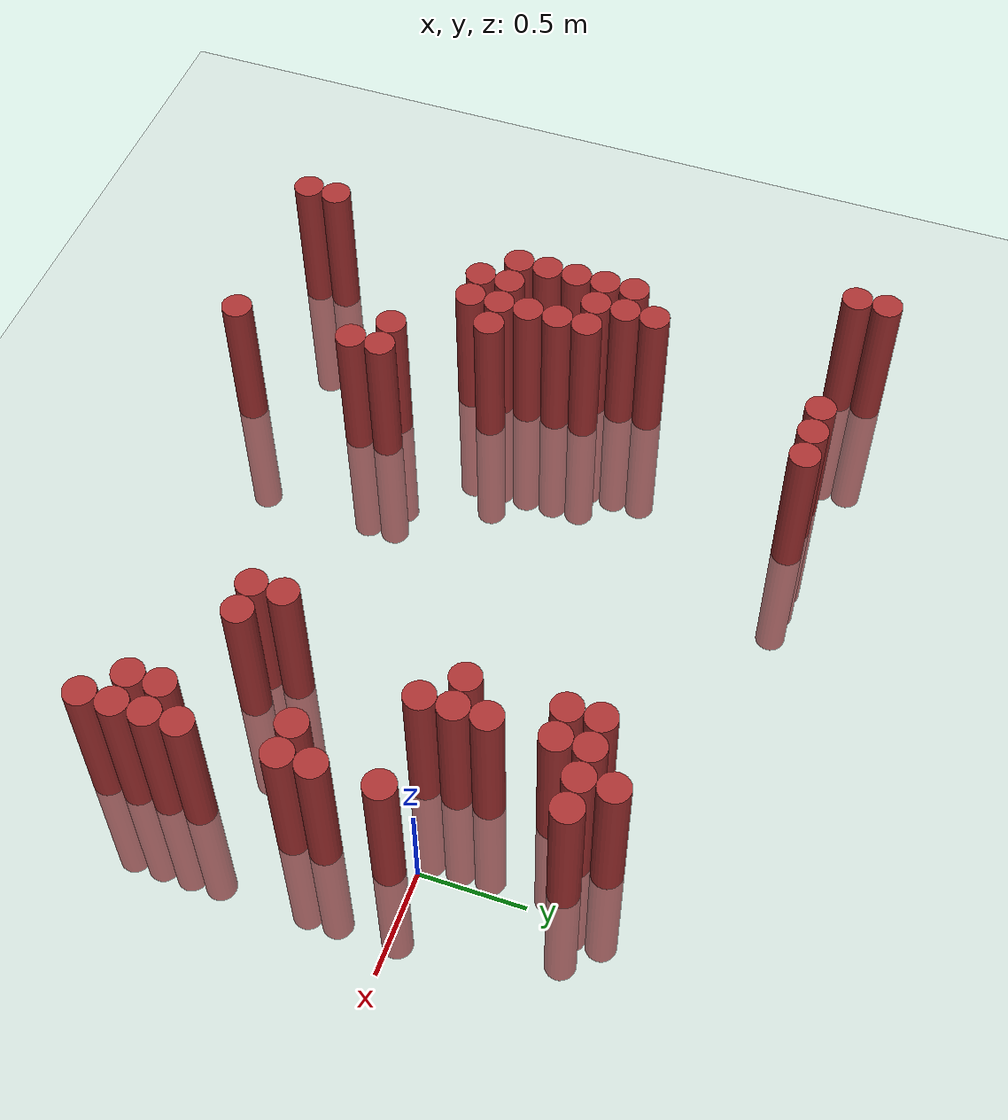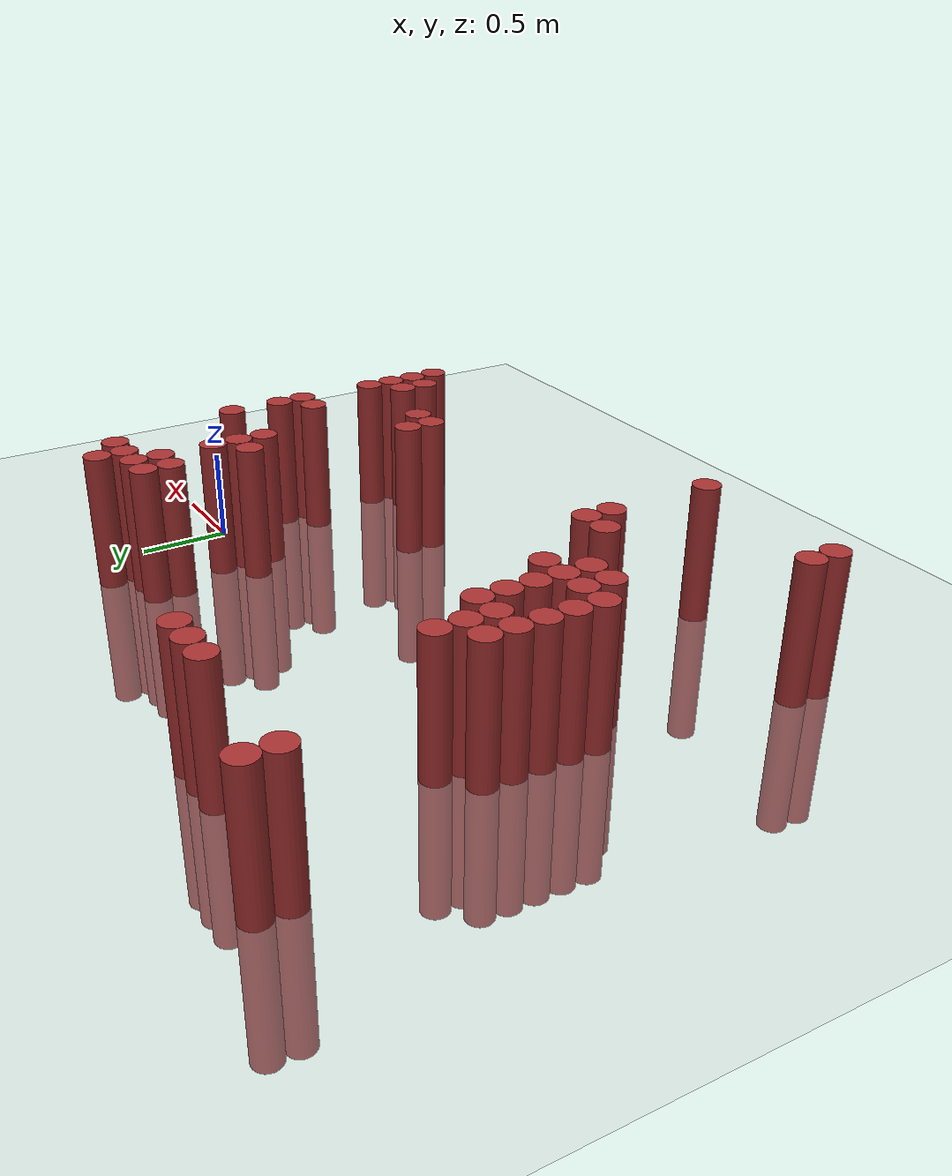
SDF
<sdf version="1.6">
 <world name="default">
  <model name="ground_plane">
   <static>1</static>
   <link name="link">
    <collision name="collision">
     <geometry><plane><normal>0 0 1</normal><size>100 100</size></plane></geometry>
     <surface><friction><ode><mu>100</mu><mu2>50</mu2></ode></friction></surface>
    </collision>
    <visual name="visual">
     <cast_shadows>0</cast_shadows>
     <geometry><plane><normal>0 0 1</normal><size>100 100</size></plane></geometry>
     <material>
      <script><uri>file://media/materials/scripts/gazebo.material</uri><name>Gazebo/Grey</name></script>
     </material>
    </visual>
   </link>
  </model>
  <model name="unit_cylinder_267">
   <static>1</static>
   <pose>-3.275000 1.075000 0.000000 0.000000 0.000000 0.000000</pose>
   <link name="link">
    <inertial>
     <mass>1</mass>
     <inertia><ixx>0.145833</ixx><ixy>0</ixy><ixz>0</ixz><iyy>0.145833</iyy><iyz>0</iyz><izz>0.125</izz></inertia>
    </inertial>
    <collision name="collision">
     <geometry><cylinder><radius>0.075000</radius><length>1.5</length></cylinder></geometry>
    </collision>
    <visual name="visual">
     <geometry><cylinder><radius>0.075000</radius><length>1.5</length></cylinder></geometry>
     <material>
      <ambient>0.648000 0.192000 0.192000 1</ambient>
      <diffuse>0.648000 0.192000 0.192000 1</diffuse>
     </material>
     <material>
      <script><name>Gazebo/Grey</name><uri>file://media/materials/scripts/gazebo.material</uri></script>
     </material>
    </visual>
   </link>
  </model>
  <model name="unit_cylinder_268">
   <static>1</static>
   <pose>-3.275000 1.225000 0.000000 0.000000 0.000000 0.000000</pose>
   <link name="link">
    <inertial>
     <mass>1</mass>
     <inertia><ixx>0.145833</ixx><ixy>0</ixy><ixz>0</ixz><iyy>0.145833</iyy><iyz>0</iyz><izz>0.125</izz></inertia>
    </inertial>
    <collision name="collision">
     <geometry><cylinder><radius>0.075000</radius><length>1.5</length></cylinder></geometry>
    </collision>
    <visual name="visual">
     <geometry><cylinder><radius>0.075000</radius><length>1.5</length></cylinder></geometry>
     <material>
      <ambient>0.648000 0.192000 0.192000 1</ambient>
      <diffuse>0.648000 0.192000 0.192000 1</diffuse>
     </material>
     <material>
      <script><name>Gazebo/Grey</name><uri>file://media/materials/scripts/gazebo.material</uri></script>
     </material>
    </visual>
   </link>
  </model>
  <model name="unit_cylinder_281">
   <static>1</static>
   <pose>-3.125000 -1.775000 0.000000 0.000000 0.000000 0.000000</pose>
   <link name="link">
    <inertial>
     <mass>1</mass>
     <inertia><ixx>0.145833</ixx><ixy>0</ixy><ixz>0</ixz><iyy>0.145833</iyy><iyz>0</iyz><izz>0.125</izz></inertia>
    </inertial>
    <collision name="collision">
     <geometry><cylinder><radius>0.075000</radius><length>1.5</length></cylinder></geometry>
    </collision>
    <visual name="visual">
     <geometry><cylinder><radius>0.075000</radius><length>1.5</length></cylinder></geometry>
     <material>
      <ambient>0.648000 0.192000 0.192000 1</ambient>
      <diffuse>0.648000 0.192000 0.192000 1</diffuse>
     </material>
     <material>
      <script><name>Gazebo/Grey</name><uri>file://media/materials/scripts/gazebo.material</uri></script>
     </material>
    </visual>
   </link>
  </model>
  <model name="unit_cylinder_282">
   <static>1</static>
   <pose>-3.125000 -1.625000 0.000000 0.000000 0.000000 0.000000</pose>
   <link name="link">
    <inertial>
     <mass>1</mass>
     <inertia><ixx>0.145833</ixx><ixy>0</ixy><ixz>0</ixz><iyy>0.145833</iyy><iyz>0</iyz><izz>0.125</izz></inertia>
    </inertial>
    <collision name="collision">
     <geometry><cylinder><radius>0.075000</radius><length>1.5</length></cylinder></geometry>
    </collision>
    <visual name="visual">
     <geometry><cylinder><radius>0.075000</radius><length>1.5</length></cylinder></geometry>
     <material>
      <ambient>0.648000 0.192000 0.192000 1</ambient>
      <diffuse>0.648000 0.192000 0.192000 1</diffuse>
     </material>
     <material>
      <script><name>Gazebo/Grey</name><uri>file://media/materials/scripts/gazebo.material</uri></script>
     </material>
    </visual>
   </link>
  </model>
  <model name="unit_cylinder_287">
   <static>1</static>
   <pose>-2.975000 -0.575000 0.000000 0.000000 0.000000 0.000000</pose>
   <link name="link">
    <inertial>
     <mass>1</mass>
     <inertia><ixx>0.145833</ixx><ixy>0</ixy><ixz>0</ixz><iyy>0.145833</iyy><iyz>0</iyz><izz>0.125</izz></inertia>
    </inertial>
    <collision name="collision">
     <geometry><cylinder><radius>0.075000</radius><length>1.5</length></cylinder></geometry>
    </collision>
    <visual name="visual">
     <geometry><cylinder><radius>0.075000</radius><length>1.5</length></cylinder></geometry>
     <material>
      <ambient>0.648000 0.192000 0.192000 1</ambient>
      <diffuse>0.648000 0.192000 0.192000 1</diffuse>
     </material>
     <material>
      <script><name>Gazebo/Grey</name><uri>file://media/materials/scripts/gazebo.material</uri></script>
     </material>
    </visual>
   </link>
  </model>
  <model name="unit_cylinder_288">
   <static>1</static>
   <pose>-2.975000 -0.425000 0.000000 0.000000 0.000000 0.000000</pose>
   <link name="link">
    <inertial>
     <mass>1</mass>
     <inertia><ixx>0.145833</ixx><ixy>0</ixy><ixz>0</ixz><iyy>0.145833</iyy><iyz>0</iyz><izz>0.125</izz></inertia>
    </inertial>
    <collision name="collision">
     <geometry><cylinder><radius>0.075000</radius><length>1.5</length></cylinder></geometry>
    </collision>
    <visual name="visual">
     <geometry><cylinder><radius>0.075000</radius><length>1.5</length></cylinder></geometry>
     <material>
      <ambient>0.648000 0.192000 0.192000 1</ambient>
      <diffuse>0.648000 0.192000 0.192000 1</diffuse>
     </material>
     <material>
      <script><name>Gazebo/Grey</name><uri>file://media/materials/scripts/gazebo.material</uri></script>
     </material>
    </visual>
   </link>
  </model>
  <model name="unit_cylinder_289">
   <static>1</static>
   <pose>-2.975000 -0.275000 0.000000 0.000000 0.000000 0.000000</pose>
   <link name="link">
    <inertial>
     <mass>1</mass>
     <inertia><ixx>0.145833</ixx><ixy>0</ixy><ixz>0</ixz><iyy>0.145833</iyy><iyz>0</iyz><izz>0.125</izz></inertia>
    </inertial>
    <collision name="collision">
     <geometry><cylinder><radius>0.075000</radius><length>1.5</length></cylinder></geometry>
    </collision>
    <visual name="visual">
     <geometry><cylinder><radius>0.075000</radius><length>1.5</length></cylinder></geometry>
     <material>
      <ambient>0.648000 0.192000 0.192000 1</ambient>
      <diffuse>0.648000 0.192000 0.192000 1</diffuse>
     </material>
     <material>
      <script><name>Gazebo/Grey</name><uri>file://media/materials/scripts/gazebo.material</uri></script>
     </material>
    </visual>
   </link>
  </model>
  <model name="unit_cylinder_290">
   <static>1</static>
   <pose>-2.975000 -0.125000 0.000000 0.000000 0.000000 0.000000</pose>
   <link name="link">
    <inertial>
     <mass>1</mass>
     <inertia><ixx>0.145833</ixx><ixy>0</ixy><ixz>0</ixz><iyy>0.145833</iyy><iyz>0</iyz><izz>0.125</izz></inertia>
    </inertial>
    <collision name="collision">
     <geometry><cylinder><radius>0.075000</radius><length>1.5</length></cylinder></geometry>
    </collision>
    <visual name="visual">
     <geometry><cylinder><radius>0.075000</radius><length>1.5</length></cylinder></geometry>
     <material>
      <ambient>0.648000 0.192000 0.192000 1</ambient>
      <diffuse>0.648000 0.192000 0.192000 1</diffuse>
     </material>
     <material>
      <script><name>Gazebo/Grey</name><uri>file://media/materials/scripts/gazebo.material</uri></script>
     </material>
    </visual>
   </link>
  </model>
  <model name="unit_cylinder_291">
   <static>1</static>
   <pose>-2.975000 0.025000 0.000000 0.000000 0.000000 0.000000</pose>
   <link name="link">
    <inertial>
     <mass>1</mass>
     <inertia><ixx>0.145833</ixx><ixy>0</ixy><ixz>0</ixz><iyy>0.145833</iyy><iyz>0</iyz><izz>0.125</izz></inertia>
    </inertial>
    <collision name="collision">
     <geometry><cylinder><radius>0.075000</radius><length>1.5</length></cylinder></geometry>
    </collision>
    <visual name="visual">
     <geometry><cylinder><radius>0.075000</radius><length>1.5</length></cylinder></geometry>
     <material>
      <ambient>0.648000 0.192000 0.192000 1</ambient>
      <diffuse>0.648000 0.192000 0.192000 1</diffuse>
     </material>
     <material>
      <script><name>Gazebo/Grey</name><uri>file://media/materials/scripts/gazebo.material</uri></script>
     </material>
    </visual>
   </link>
  </model>
  <model name="unit_cylinder_297">
   <static>1</static>
   <pose>-2.825000 -0.725000 0.000000 0.000000 0.000000 0.000000</pose>
   <link name="link">
    <inertial>
     <mass>1</mass>
     <inertia><ixx>0.145833</ixx><ixy>0</ixy><ixz>0</ixz><iyy>0.145833</iyy><iyz>0</iyz><izz>0.125</izz></inertia>
    </inertial>
    <collision name="collision">
     <geometry><cylinder><radius>0.075000</radius><length>1.5</length></cylinder></geometry>
    </collision>
    <visual name="visual">
     <geometry><cylinder><radius>0.075000</radius><length>1.5</length></cylinder></geometry>
     <material>
      <ambient>0.648000 0.192000 0.192000 1</ambient>
      <diffuse>0.648000 0.192000 0.192000 1</diffuse>
     </material>
     <material>
      <script><name>Gazebo/Grey</name><uri>file://media/materials/scripts/gazebo.material</uri></script>
     </material>
    </visual>
   </link>
  </model>
  <model name="unit_cylinder_298">
   <static>1</static>
   <pose>-2.825000 -0.575000 0.000000 0.000000 0.000000 0.000000</pose>
   <link name="link">
    <inertial>
     <mass>1</mass>
     <inertia><ixx>0.145833</ixx><ixy>0</ixy><ixz>0</ixz><iyy>0.145833</iyy><iyz>0</iyz><izz>0.125</izz></inertia>
    </inertial>
    <collision name="collision">
     <geometry><cylinder><radius>0.075000</radius><length>1.5</length></cylinder></geometry>
    </collision>
    <visual name="visual">
     <geometry><cylinder><radius>0.075000</radius><length>1.5</length></cylinder></geometry>
     <material>
      <ambient>0.648000 0.192000 0.192000 1</ambient>
      <diffuse>0.648000 0.192000 0.192000 1</diffuse>
     </material>
     <material>
      <script><name>Gazebo/Grey</name><uri>file://media/materials/scripts/gazebo.material</uri></script>
     </material>
    </visual>
   </link>
  </model>
  <model name="unit_cylinder_299">
   <static>1</static>
   <pose>-2.825000 -0.125000 0.000000 0.000000 0.000000 0.000000</pose>
   <link name="link">
    <inertial>
     <mass>1</mass>
     <inertia><ixx>0.145833</ixx><ixy>0</ixy><ixz>0</ixz><iyy>0.145833</iyy><iyz>0</iyz><izz>0.125</izz></inertia>
    </inertial>
    <collision name="collision">
     <geometry><cylinder><radius>0.075000</radius><length>1.5</length></cylinder></geometry>
    </collision>
    <visual name="visual">
     <geometry><cylinder><radius>0.075000</radius><length>1.5</length></cylinder></geometry>
     <material>
      <ambient>0.648000 0.192000 0.192000 1</ambient>
      <diffuse>0.648000 0.192000 0.192000 1</diffuse>
     </material>
     <material>
      <script><name>Gazebo/Grey</name><uri>file://media/materials/scripts/gazebo.material</uri></script>
     </material>
    </visual>
   </link>
  </model>
  <model name="unit_cylinder_300">
   <static>1</static>
   <pose>-2.825000 0.025000 0.000000 0.000000 0.000000 0.000000</pose>
   <link name="link">
    <inertial>
     <mass>1</mass>
     <inertia><ixx>0.145833</ixx><ixy>0</ixy><ixz>0</ixz><iyy>0.145833</iyy><iyz>0</iyz><izz>0.125</izz></inertia>
    </inertial>
    <collision name="collision">
     <geometry><cylinder><radius>0.075000</radius><length>1.5</length></cylinder></geometry>
    </collision>
    <visual name="visual">
     <geometry><cylinder><radius>0.075000</radius><length>1.5</length></cylinder></geometry>
     <material>
      <ambient>0.648000 0.192000 0.192000 1</ambient>
      <diffuse>0.648000 0.192000 0.192000 1</diffuse>
     </material>
     <material>
      <script><name>Gazebo/Grey</name><uri>file://media/materials/scripts/gazebo.material</uri></script>
     </material>
    </visual>
   </link>
  </model>
  <model name="unit_cylinder_301">
   <static>1</static>
   <pose>-2.825000 0.175000 0.000000 0.000000 0.000000 0.000000</pose>
   <link name="link">
    <inertial>
     <mass>1</mass>
     <inertia><ixx>0.145833</ixx><ixy>0</ixy><ixz>0</ixz><iyy>0.145833</iyy><iyz>0</iyz><izz>0.125</izz></inertia>
    </inertial>
    <collision name="collision">
     <geometry><cylinder><radius>0.075000</radius><length>1.5</length></cylinder></geometry>
    </collision>
    <visual name="visual">
     <geometry><cylinder><radius>0.075000</radius><length>1.5</length></cylinder></geometry>
     <material>
      <ambient>0.648000 0.192000 0.192000 1</ambient>
      <diffuse>0.648000 0.192000 0.192000 1</diffuse>
     </material>
     <material>
      <script><name>Gazebo/Grey</name><uri>file://media/materials/scripts/gazebo.material</uri></script>
     </material>
    </visual>
   </link>
  </model>
  <model name="unit_cylinder_309">
   <static>1</static>
   <pose>-2.675000 -0.725000 0.000000 0.000000 0.000000 0.000000</pose>
   <link name="link">
    <inertial>
     <mass>1</mass>
     <inertia><ixx>0.145833</ixx><ixy>0</ixy><ixz>0</ixz><iyy>0.145833</iyy><iyz>0</iyz><izz>0.125</izz></inertia>
    </inertial>
    <collision name="collision">
     <geometry><cylinder><radius>0.075000</radius><length>1.5</length></cylinder></geometry>
    </collision>
    <visual name="visual">
     <geometry><cylinder><radius>0.075000</radius><length>1.5</length></cylinder></geometry>
     <material>
      <ambient>0.648000 0.192000 0.192000 1</ambient>
      <diffuse>0.648000 0.192000 0.192000 1</diffuse>
     </material>
     <material>
      <script><name>Gazebo/Grey</name><uri>file://media/materials/scripts/gazebo.material</uri></script>
     </material>
    </visual>
   </link>
  </model>
  <model name="unit_cylinder_310">
   <static>1</static>
   <pose>-2.675000 -0.575000 0.000000 0.000000 0.000000 0.000000</pose>
   <link name="link">
    <inertial>
     <mass>1</mass>
     <inertia><ixx>0.145833</ixx><ixy>0</ixy><ixz>0</ixz><iyy>0.145833</iyy><iyz>0</iyz><izz>0.125</izz></inertia>
    </inertial>
    <collision name="collision">
     <geometry><cylinder><radius>0.075000</radius><length>1.5</length></cylinder></geometry>
    </collision>
    <visual name="visual">
     <geometry><cylinder><radius>0.075000</radius><length>1.5</length></cylinder></geometry>
     <material>
      <ambient>0.648000 0.192000 0.192000 1</ambient>
      <diffuse>0.648000 0.192000 0.192000 1</diffuse>
     </material>
     <material>
      <script><name>Gazebo/Grey</name><uri>file://media/materials/scripts/gazebo.material</uri></script>
     </material>
    </visual>
   </link>
  </model>
  <model name="unit_cylinder_311">
   <static>1</static>
   <pose>-2.675000 -0.425000 0.000000 0.000000 0.000000 0.000000</pose>
   <link name="link">
    <inertial>
     <mass>1</mass>
     <inertia><ixx>0.145833</ixx><ixy>0</ixy><ixz>0</ixz><iyy>0.145833</iyy><iyz>0</iyz><izz>0.125</izz></inertia>
    </inertial>
    <collision name="collision">
     <geometry><cylinder><radius>0.075000</radius><length>1.5</length></cylinder></geometry>
    </collision>
    <visual name="visual">
     <geometry><cylinder><radius>0.075000</radius><length>1.5</length></cylinder></geometry>
     <material>
      <ambient>0.648000 0.192000 0.192000 1</ambient>
      <diffuse>0.648000 0.192000 0.192000 1</diffuse>
     </material>
     <material>
      <script><name>Gazebo/Grey</name><uri>file://media/materials/scripts/gazebo.material</uri></script>
     </material>
    </visual>
   </link>
  </model>
  <model name="unit_cylinder_312">
   <static>1</static>
   <pose>-2.675000 -0.275000 0.000000 0.000000 0.000000 0.000000</pose>
   <link name="link">
    <inertial>
     <mass>1</mass>
     <inertia><ixx>0.145833</ixx><ixy>0</ixy><ixz>0</ixz><iyy>0.145833</iyy><iyz>0</iyz><izz>0.125</izz></inertia>
    </inertial>
    <collision name="collision">
     <geometry><cylinder><radius>0.075000</radius><length>1.5</length></cylinder></geometry>
    </collision>
    <visual name="visual">
     <geometry><cylinder><radius>0.075000</radius><length>1.5</length></cylinder></geometry>
     <material>
      <ambient>0.648000 0.192000 0.192000 1</ambient>
      <diffuse>0.648000 0.192000 0.192000 1</diffuse>
     </material>
     <material>
      <script><name>Gazebo/Grey</name><uri>file://media/materials/scripts/gazebo.material</uri></script>
     </material>
    </visual>
   </link>
  </model>
  <model name="unit_cylinder_313">
   <static>1</static>
   <pose>-2.675000 -0.125000 0.000000 0.000000 0.000000 0.000000</pose>
   <link name="link">
    <inertial>
     <mass>1</mass>
     <inertia><ixx>0.145833</ixx><ixy>0</ixy><ixz>0</ixz><iyy>0.145833</iyy><iyz>0</iyz><izz>0.125</izz></inertia>
    </inertial>
    <collision name="collision">
     <geometry><cylinder><radius>0.075000</radius><length>1.5</length></cylinder></geometry>
    </collision>
    <visual name="visual">
     <geometry><cylinder><radius>0.075000</radius><length>1.5</length></cylinder></geometry>
     <material>
      <ambient>0.648000 0.192000 0.192000 1</ambient>
      <diffuse>0.648000 0.192000 0.192000 1</diffuse>
     </material>
     <material>
      <script><name>Gazebo/Grey</name><uri>file://media/materials/scripts/gazebo.material</uri></script>
     </material>
    </visual>
   </link>
  </model>
  <model name="unit_cylinder_324">
   <static>1</static>
   <pose>-2.525000 -0.575000 0.000000 0.000000 0.000000 0.000000</pose>
   <link name="link">
    <inertial>
     <mass>1</mass>
     <inertia><ixx>0.145833</ixx><ixy>0</ixy><ixz>0</ixz><iyy>0.145833</iyy><iyz>0</iyz><izz>0.125</izz></inertia>
    </inertial>
    <collision name="collision">
     <geometry><cylinder><radius>0.075000</radius><length>1.5</length></cylinder></geometry>
    </collision>
    <visual name="visual">
     <geometry><cylinder><radius>0.075000</radius><length>1.5</length></cylinder></geometry>
     <material>
      <ambient>0.648000 0.192000 0.192000 1</ambient>
      <diffuse>0.648000 0.192000 0.192000 1</diffuse>
     </material>
     <material>
      <script><name>Gazebo/Grey</name><uri>file://media/materials/scripts/gazebo.material</uri></script>
     </material>
    </visual>
   </link>
  </model>
  <model name="unit_cylinder_325">
   <static>1</static>
   <pose>-2.525000 1.075000 0.000000 0.000000 0.000000 0.000000</pose>
   <link name="link">
    <inertial>
     <mass>1</mass>
     <inertia><ixx>0.145833</ixx><ixy>0</ixy><ixz>0</ixz><iyy>0.145833</iyy><iyz>0</iyz><izz>0.125</izz></inertia>
    </inertial>
    <collision name="collision">
     <geometry><cylinder><radius>0.075000</radius><length>1.5</length></cylinder></geometry>
    </collision>
    <visual name="visual">
     <geometry><cylinder><radius>0.075000</radius><length>1.5</length></cylinder></geometry>
     <material>
      <ambient>0.648000 0.192000 0.192000 1</ambient>
      <diffuse>0.648000 0.192000 0.192000 1</diffuse>
     </material>
     <material>
      <script><name>Gazebo/Grey</name><uri>file://media/materials/scripts/gazebo.material</uri></script>
     </material>
    </visual>
   </link>
  </model>
  <model name="unit_cylinder_334">
   <static>1</static>
   <pose>-2.375000 -1.025000 0.000000 0.000000 0.000000 0.000000</pose>
   <link name="link">
    <inertial>
     <mass>1</mass>
     <inertia><ixx>0.145833</ixx><ixy>0</ixy><ixz>0</ixz><iyy>0.145833</iyy><iyz>0</iyz><izz>0.125</izz></inertia>
    </inertial>
    <collision name="collision">
     <geometry><cylinder><radius>0.075000</radius><length>1.5</length></cylinder></geometry>
    </collision>
    <visual name="visual">
     <geometry><cylinder><radius>0.075000</radius><length>1.5</length></cylinder></geometry>
     <material>
      <ambient>0.648000 0.192000 0.192000 1</ambient>
      <diffuse>0.648000 0.192000 0.192000 1</diffuse>
     </material>
     <material>
      <script><name>Gazebo/Grey</name><uri>file://media/materials/scripts/gazebo.material</uri></script>
     </material>
    </visual>
   </link>
  </model>
  <model name="unit_cylinder_335">
   <static>1</static>
   <pose>-2.375000 1.075000 0.000000 0.000000 0.000000 0.000000</pose>
   <link name="link">
    <inertial>
     <mass>1</mass>
     <inertia><ixx>0.145833</ixx><ixy>0</ixy><ixz>0</ixz><iyy>0.145833</iyy><iyz>0</iyz><izz>0.125</izz></inertia>
    </inertial>
    <collision name="collision">
     <geometry><cylinder><radius>0.075000</radius><length>1.5</length></cylinder></geometry>
    </collision>
    <visual name="visual">
     <geometry><cylinder><radius>0.075000</radius><length>1.5</length></cylinder></geometry>
     <material>
      <ambient>0.648000 0.192000 0.192000 1</ambient>
      <diffuse>0.648000 0.192000 0.192000 1</diffuse>
     </material>
     <material>
      <script><name>Gazebo/Grey</name><uri>file://media/materials/scripts/gazebo.material</uri></script>
     </material>
    </visual>
   </link>
  </model>
  <model name="unit_cylinder_339">
   <static>1</static>
   <pose>-2.225000 -1.775000 0.000000 0.000000 0.000000 0.000000</pose>
   <link name="link">
    <inertial>
     <mass>1</mass>
     <inertia><ixx>0.145833</ixx><ixy>0</ixy><ixz>0</ixz><iyy>0.145833</iyy><iyz>0</iyz><izz>0.125</izz></inertia>
    </inertial>
    <collision name="collision">
     <geometry><cylinder><radius>0.075000</radius><length>1.5</length></cylinder></geometry>
    </collision>
    <visual name="visual">
     <geometry><cylinder><radius>0.075000</radius><length>1.5</length></cylinder></geometry>
     <material>
      <ambient>0.648000 0.192000 0.192000 1</ambient>
      <diffuse>0.648000 0.192000 0.192000 1</diffuse>
     </material>
     <material>
      <script><name>Gazebo/Grey</name><uri>file://media/materials/scripts/gazebo.material</uri></script>
     </material>
    </visual>
   </link>
  </model>
  <model name="unit_cylinder_340">
   <static>1</static>
   <pose>-2.225000 -1.175000 0.000000 0.000000 0.000000 0.000000</pose>
   <link name="link">
    <inertial>
     <mass>1</mass>
     <inertia><ixx>0.145833</ixx><ixy>0</ixy><ixz>0</ixz><iyy>0.145833</iyy><iyz>0</iyz><izz>0.125</izz></inertia>
    </inertial>
    <collision name="collision">
     <geometry><cylinder><radius>0.075000</radius><length>1.5</length></cylinder></geometry>
    </collision>
    <visual name="visual">
     <geometry><cylinder><radius>0.075000</radius><length>1.5</length></cylinder></geometry>
     <material>
      <ambient>0.648000 0.192000 0.192000 1</ambient>
      <diffuse>0.648000 0.192000 0.192000 1</diffuse>
     </material>
     <material>
      <script><name>Gazebo/Grey</name><uri>file://media/materials/scripts/gazebo.material</uri></script>
     </material>
    </visual>
   </link>
  </model>
  <model name="unit_cylinder_341">
   <static>1</static>
   <pose>-2.225000 -1.025000 0.000000 0.000000 0.000000 0.000000</pose>
   <link name="link">
    <inertial>
     <mass>1</mass>
     <inertia><ixx>0.145833</ixx><ixy>0</ixy><ixz>0</ixz><iyy>0.145833</iyy><iyz>0</iyz><izz>0.125</izz></inertia>
    </inertial>
    <collision name="collision">
     <geometry><cylinder><radius>0.075000</radius><length>1.5</length></cylinder></geometry>
    </collision>
    <visual name="visual">
     <geometry><cylinder><radius>0.075000</radius><length>1.5</length></cylinder></geometry>
     <material>
      <ambient>0.648000 0.192000 0.192000 1</ambient>
      <diffuse>0.648000 0.192000 0.192000 1</diffuse>
     </material>
     <material>
      <script><name>Gazebo/Grey</name><uri>file://media/materials/scripts/gazebo.material</uri></script>
     </material>
    </visual>
   </link>
  </model>
  <model name="unit_cylinder_342">
   <static>1</static>
   <pose>-2.225000 1.075000 0.000000 0.000000 0.000000 0.000000</pose>
   <link name="link">
    <inertial>
     <mass>1</mass>
     <inertia><ixx>0.145833</ixx><ixy>0</ixy><ixz>0</ixz><iyy>0.145833</iyy><iyz>0</iyz><izz>0.125</izz></inertia>
    </inertial>
    <collision name="collision">
     <geometry><cylinder><radius>0.075000</radius><length>1.5</length></cylinder></geometry>
    </collision>
    <visual name="visual">
     <geometry><cylinder><radius>0.075000</radius><length>1.5</length></cylinder></geometry>
     <material>
      <ambient>0.648000 0.192000 0.192000 1</ambient>
      <diffuse>0.648000 0.192000 0.192000 1</diffuse>
     </material>
     <material>
      <script><name>Gazebo/Grey</name><uri>file://media/materials/scripts/gazebo.material</uri></script>
     </material>
    </visual>
   </link>
  </model>
  <model name="unit_cylinder_382">
   <static>1</static>
   <pose>-0.725000 -1.025000 0.000000 0.000000 0.000000 0.000000</pose>
   <link name="link">
    <inertial>
     <mass>1</mass>
     <inertia><ixx>0.145833</ixx><ixy>0</ixy><ixz>0</ixz><iyy>0.145833</iyy><iyz>0</iyz><izz>0.125</izz></inertia>
    </inertial>
    <collision name="collision">
     <geometry><cylinder><radius>0.075000</radius><length>1.5</length></cylinder></geometry>
    </collision>
    <visual name="visual">
     <geometry><cylinder><radius>0.075000</radius><length>1.5</length></cylinder></geometry>
     <material>
      <ambient>0.648000 0.192000 0.192000 1</ambient>
      <diffuse>0.648000 0.192000 0.192000 1</diffuse>
     </material>
     <material>
      <script><name>Gazebo/Grey</name><uri>file://media/materials/scripts/gazebo.material</uri></script>
     </material>
    </visual>
   </link>
  </model>
  <model name="unit_cylinder_383">
   <static>1</static>
   <pose>-0.725000 -0.875000 0.000000 0.000000 0.000000 0.000000</pose>
   <link name="link">
    <inertial>
     <mass>1</mass>
     <inertia><ixx>0.145833</ixx><ixy>0</ixy><ixz>0</ixz><iyy>0.145833</iyy><iyz>0</iyz><izz>0.125</izz></inertia>
    </inertial>
    <collision name="collision">
     <geometry><cylinder><radius>0.075000</radius><length>1.5</length></cylinder></geometry>
    </collision>
    <visual name="visual">
     <geometry><cylinder><radius>0.075000</radius><length>1.5</length></cylinder></geometry>
     <material>
      <ambient>0.648000 0.192000 0.192000 1</ambient>
      <diffuse>0.648000 0.192000 0.192000 1</diffuse>
     </material>
     <material>
      <script><name>Gazebo/Grey</name><uri>file://media/materials/scripts/gazebo.material</uri></script>
     </material>
    </visual>
   </link>
  </model>
  <model name="unit_cylinder_387">
   <static>1</static>
   <pose>-0.575000 -1.025000 0.000000 0.000000 0.000000 0.000000</pose>
   <link name="link">
    <inertial>
     <mass>1</mass>
     <inertia><ixx>0.145833</ixx><ixy>0</ixy><ixz>0</ixz><iyy>0.145833</iyy><iyz>0</iyz><izz>0.125</izz></inertia>
    </inertial>
    <collision name="collision">
     <geometry><cylinder><radius>0.075000</radius><length>1.5</length></cylinder></geometry>
    </collision>
    <visual name="visual">
     <geometry><cylinder><radius>0.075000</radius><length>1.5</length></cylinder></geometry>
     <material>
      <ambient>0.648000 0.192000 0.192000 1</ambient>
      <diffuse>0.648000 0.192000 0.192000 1</diffuse>
     </material>
     <material>
      <script><name>Gazebo/Grey</name><uri>file://media/materials/scripts/gazebo.material</uri></script>
     </material>
    </visual>
   </link>
  </model>
  <model name="unit_cylinder_388">
   <static>1</static>
   <pose>-0.575000 0.025000 0.000000 0.000000 0.000000 0.000000</pose>
   <link name="link">
    <inertial>
     <mass>1</mass>
     <inertia><ixx>0.145833</ixx><ixy>0</ixy><ixz>0</ixz><iyy>0.145833</iyy><iyz>0</iyz><izz>0.125</izz></inertia>
    </inertial>
    <collision name="collision">
     <geometry><cylinder><radius>0.075000</radius><length>1.5</length></cylinder></geometry>
    </collision>
    <visual name="visual">
     <geometry><cylinder><radius>0.075000</radius><length>1.5</length></cylinder></geometry>
     <material>
      <ambient>0.648000 0.192000 0.192000 1</ambient>
      <diffuse>0.648000 0.192000 0.192000 1</diffuse>
     </material>
     <material>
      <script><name>Gazebo/Grey</name><uri>file://media/materials/scripts/gazebo.material</uri></script>
     </material>
    </visual>
   </link>
  </model>
  <model name="unit_cylinder_389">
   <static>1</static>
   <pose>-0.575000 0.475000 0.000000 0.000000 0.000000 0.000000</pose>
   <link name="link">
    <inertial>
     <mass>1</mass>
     <inertia><ixx>0.145833</ixx><ixy>0</ixy><ixz>0</ixz><iyy>0.145833</iyy><iyz>0</iyz><izz>0.125</izz></inertia>
    </inertial>
    <collision name="collision">
     <geometry><cylinder><radius>0.075000</radius><length>1.5</length></cylinder></geometry>
    </collision>
    <visual name="visual">
     <geometry><cylinder><radius>0.075000</radius><length>1.5</length></cylinder></geometry>
     <material>
      <ambient>0.648000 0.192000 0.192000 1</ambient>
      <diffuse>0.648000 0.192000 0.192000 1</diffuse>
     </material>
     <material>
      <script><name>Gazebo/Grey</name><uri>file://media/materials/scripts/gazebo.material</uri></script>
     </material>
    </visual>
   </link>
  </model>
  <model name="unit_cylinder_390">
   <static>1</static>
   <pose>-0.575000 0.625000 0.000000 0.000000 0.000000 0.000000</pose>
   <link name="link">
    <inertial>
     <mass>1</mass>
     <inertia><ixx>0.145833</ixx><ixy>0</ixy><ixz>0</ixz><iyy>0.145833</iyy><iyz>0</iyz><izz>0.125</izz></inertia>
    </inertial>
    <collision name="collision">
     <geometry><cylinder><radius>0.075000</radius><length>1.5</length></cylinder></geometry>
    </collision>
    <visual name="visual">
     <geometry><cylinder><radius>0.075000</radius><length>1.5</length></cylinder></geometry>
     <material>
      <ambient>0.648000 0.192000 0.192000 1</ambient>
      <diffuse>0.648000 0.192000 0.192000 1</diffuse>
     </material>
     <material>
      <script><name>Gazebo/Grey</name><uri>file://media/materials/scripts/gazebo.material</uri></script>
     </material>
    </visual>
   </link>
  </model>
  <model name="unit_cylinder_394">
   <static>1</static>
   <pose>-0.425000 -0.125000 0.000000 0.000000 0.000000 0.000000</pose>
   <link name="link">
    <inertial>
     <mass>1</mass>
     <inertia><ixx>0.145833</ixx><ixy>0</ixy><ixz>0</ixz><iyy>0.145833</iyy><iyz>0</iyz><izz>0.125</izz></inertia>
    </inertial>
    <collision name="collision">
     <geometry><cylinder><radius>0.075000</radius><length>1.5</length></cylinder></geometry>
    </collision>
    <visual name="visual">
     <geometry><cylinder><radius>0.075000</radius><length>1.5</length></cylinder></geometry>
     <material>
      <ambient>0.648000 0.192000 0.192000 1</ambient>
      <diffuse>0.648000 0.192000 0.192000 1</diffuse>
     </material>
     <material>
      <script><name>Gazebo/Grey</name><uri>file://media/materials/scripts/gazebo.material</uri></script>
     </material>
    </visual>
   </link>
  </model>
  <model name="unit_cylinder_395">
   <static>1</static>
   <pose>-0.425000 0.025000 0.000000 0.000000 0.000000 0.000000</pose>
   <link name="link">
    <inertial>
     <mass>1</mass>
     <inertia><ixx>0.145833</ixx><ixy>0</ixy><ixz>0</ixz><iyy>0.145833</iyy><iyz>0</iyz><izz>0.125</izz></inertia>
    </inertial>
    <collision name="collision">
     <geometry><cylinder><radius>0.075000</radius><length>1.5</length></cylinder></geometry>
    </collision>
    <visual name="visual">
     <geometry><cylinder><radius>0.075000</radius><length>1.5</length></cylinder></geometry>
     <material>
      <ambient>0.648000 0.192000 0.192000 1</ambient>
      <diffuse>0.648000 0.192000 0.192000 1</diffuse>
     </material>
     <material>
      <script><name>Gazebo/Grey</name><uri>file://media/materials/scripts/gazebo.material</uri></script>
     </material>
    </visual>
   </link>
  </model>
  <model name="unit_cylinder_396">
   <static>1</static>
   <pose>-0.425000 0.175000 0.000000 0.000000 0.000000 0.000000</pose>
   <link name="link">
    <inertial>
     <mass>1</mass>
     <inertia><ixx>0.145833</ixx><ixy>0</ixy><ixz>0</ixz><iyy>0.145833</iyy><iyz>0</iyz><izz>0.125</izz></inertia>
    </inertial>
    <collision name="collision">
     <geometry><cylinder><radius>0.075000</radius><length>1.5</length></cylinder></geometry>
    </collision>
    <visual name="visual">
     <geometry><cylinder><radius>0.075000</radius><length>1.5</length></cylinder></geometry>
     <material>
      <ambient>0.648000 0.192000 0.192000 1</ambient>
      <diffuse>0.648000 0.192000 0.192000 1</diffuse>
     </material>
     <material>
      <script><name>Gazebo/Grey</name><uri>file://media/materials/scripts/gazebo.material</uri></script>
     </material>
    </visual>
   </link>
  </model>
  <model name="unit_cylinder_397">
   <static>1</static>
   <pose>-0.425000 0.475000 0.000000 0.000000 0.000000 0.000000</pose>
   <link name="link">
    <inertial>
     <mass>1</mass>
     <inertia><ixx>0.145833</ixx><ixy>0</ixy><ixz>0</ixz><iyy>0.145833</iyy><iyz>0</iyz><izz>0.125</izz></inertia>
    </inertial>
    <collision name="collision">
     <geometry><cylinder><radius>0.075000</radius><length>1.5</length></cylinder></geometry>
    </collision>
    <visual name="visual">
     <geometry><cylinder><radius>0.075000</radius><length>1.5</length></cylinder></geometry>
     <material>
      <ambient>0.648000 0.192000 0.192000 1</ambient>
      <diffuse>0.648000 0.192000 0.192000 1</diffuse>
     </material>
     <material>
      <script><name>Gazebo/Grey</name><uri>file://media/materials/scripts/gazebo.material</uri></script>
     </material>
    </visual>
   </link>
  </model>
  <model name="unit_cylinder_398">
   <static>1</static>
   <pose>-0.425000 0.625000 0.000000 0.000000 0.000000 0.000000</pose>
   <link name="link">
    <inertial>
     <mass>1</mass>
     <inertia><ixx>0.145833</ixx><ixy>0</ixy><ixz>0</ixz><iyy>0.145833</iyy><iyz>0</iyz><izz>0.125</izz></inertia>
    </inertial>
    <collision name="collision">
     <geometry><cylinder><radius>0.075000</radius><length>1.5</length></cylinder></geometry>
    </collision>
    <visual name="visual">
     <geometry><cylinder><radius>0.075000</radius><length>1.5</length></cylinder></geometry>
     <material>
      <ambient>0.648000 0.192000 0.192000 1</ambient>
      <diffuse>0.648000 0.192000 0.192000 1</diffuse>
     </material>
     <material>
      <script><name>Gazebo/Grey</name><uri>file://media/materials/scripts/gazebo.material</uri></script>
     </material>
    </visual>
   </link>
  </model>
  <model name="unit_cylinder_401">
   <static>1</static>
   <pose>-0.275000 0.625000 0.000000 0.000000 0.000000 0.000000</pose>
   <link name="link">
    <inertial>
     <mass>1</mass>
     <inertia><ixx>0.145833</ixx><ixy>0</ixy><ixz>0</ixz><iyy>0.145833</iyy><iyz>0</iyz><izz>0.125</izz></inertia>
    </inertial>
    <collision name="collision">
     <geometry><cylinder><radius>0.075000</radius><length>1.5</length></cylinder></geometry>
    </collision>
    <visual name="visual">
     <geometry><cylinder><radius>0.075000</radius><length>1.5</length></cylinder></geometry>
     <material>
      <ambient>0.648000 0.192000 0.192000 1</ambient>
      <diffuse>0.648000 0.192000 0.192000 1</diffuse>
     </material>
     <material>
      <script><name>Gazebo/Grey</name><uri>file://media/materials/scripts/gazebo.material</uri></script>
     </material>
    </visual>
   </link>
  </model>
  <model name="unit_cylinder_402">
   <static>1</static>
   <pose>-0.275000 0.775000 0.000000 0.000000 0.000000 0.000000</pose>
   <link name="link">
    <inertial>
     <mass>1</mass>
     <inertia><ixx>0.145833</ixx><ixy>0</ixy><ixz>0</ixz><iyy>0.145833</iyy><iyz>0</iyz><izz>0.125</izz></inertia>
    </inertial>
    <collision name="collision">
     <geometry><cylinder><radius>0.075000</radius><length>1.5</length></cylinder></geometry>
    </collision>
    <visual name="visual">
     <geometry><cylinder><radius>0.075000</radius><length>1.5</length></cylinder></geometry>
     <material>
      <ambient>0.648000 0.192000 0.192000 1</ambient>
      <diffuse>0.648000 0.192000 0.192000 1</diffuse>
     </material>
     <material>
      <script><name>Gazebo/Grey</name><uri>file://media/materials/scripts/gazebo.material</uri></script>
     </material>
    </visual>
   </link>
  </model>
  <model name="unit_cylinder_407">
   <static>1</static>
   <pose>-0.125000 -1.325000 0.000000 0.000000 0.000000 0.000000</pose>
   <link name="link">
    <inertial>
     <mass>1</mass>
     <inertia><ixx>0.145833</ixx><ixy>0</ixy><ixz>0</ixz><iyy>0.145833</iyy><iyz>0</iyz><izz>0.125</izz></inertia>
    </inertial>
    <collision name="collision">
     <geometry><cylinder><radius>0.075000</radius><length>1.5</length></cylinder></geometry>
    </collision>
    <visual name="visual">
     <geometry><cylinder><radius>0.075000</radius><length>1.5</length></cylinder></geometry>
     <material>
      <ambient>0.648000 0.192000 0.192000 1</ambient>
      <diffuse>0.648000 0.192000 0.192000 1</diffuse>
     </material>
     <material>
      <script><name>Gazebo/Grey</name><uri>file://media/materials/scripts/gazebo.material</uri></script>
     </material>
    </visual>
   </link>
  </model>
  <model name="unit_cylinder_408">
   <static>1</static>
   <pose>-0.125000 -1.175000 0.000000 0.000000 0.000000 0.000000</pose>
   <link name="link">
    <inertial>
     <mass>1</mass>
     <inertia><ixx>0.145833</ixx><ixy>0</ixy><ixz>0</ixz><iyy>0.145833</iyy><iyz>0</iyz><izz>0.125</izz></inertia>
    </inertial>
    <collision name="collision">
     <geometry><cylinder><radius>0.075000</radius><length>1.5</length></cylinder></geometry>
    </collision>
    <visual name="visual">
     <geometry><cylinder><radius>0.075000</radius><length>1.5</length></cylinder></geometry>
     <material>
      <ambient>0.648000 0.192000 0.192000 1</ambient>
      <diffuse>0.648000 0.192000 0.192000 1</diffuse>
     </material>
     <material>
      <script><name>Gazebo/Grey</name><uri>file://media/materials/scripts/gazebo.material</uri></script>
     </material>
    </visual>
   </link>
  </model>
  <model name="unit_cylinder_409">
   <static>1</static>
   <pose>-0.125000 -0.575000 0.000000 0.000000 0.000000 0.000000</pose>
   <link name="link">
    <inertial>
     <mass>1</mass>
     <inertia><ixx>0.145833</ixx><ixy>0</ixy><ixz>0</ixz><iyy>0.145833</iyy><iyz>0</iyz><izz>0.125</izz></inertia>
    </inertial>
    <collision name="collision">
     <geometry><cylinder><radius>0.075000</radius><length>1.5</length></cylinder></geometry>
    </collision>
    <visual name="visual">
     <geometry><cylinder><radius>0.075000</radius><length>1.5</length></cylinder></geometry>
     <material>
      <ambient>0.648000 0.192000 0.192000 1</ambient>
      <diffuse>0.648000 0.192000 0.192000 1</diffuse>
     </material>
     <material>
      <script><name>Gazebo/Grey</name><uri>file://media/materials/scripts/gazebo.material</uri></script>
     </material>
    </visual>
   </link>
  </model>
  <model name="unit_cylinder_410">
   <static>1</static>
   <pose>-0.125000 0.625000 0.000000 0.000000 0.000000 0.000000</pose>
   <link name="link">
    <inertial>
     <mass>1</mass>
     <inertia><ixx>0.145833</ixx><ixy>0</ixy><ixz>0</ixz><iyy>0.145833</iyy><iyz>0</iyz><izz>0.125</izz></inertia>
    </inertial>
    <collision name="collision">
     <geometry><cylinder><radius>0.075000</radius><length>1.5</length></cylinder></geometry>
    </collision>
    <visual name="visual">
     <geometry><cylinder><radius>0.075000</radius><length>1.5</length></cylinder></geometry>
     <material>
      <ambient>0.648000 0.192000 0.192000 1</ambient>
      <diffuse>0.648000 0.192000 0.192000 1</diffuse>
     </material>
     <material>
      <script><name>Gazebo/Grey</name><uri>file://media/materials/scripts/gazebo.material</uri></script>
     </material>
    </visual>
   </link>
  </model>
  <model name="unit_cylinder_415">
   <static>1</static>
   <pose>0.025000 -1.475000 0.000000 0.000000 0.000000 0.000000</pose>
   <link name="link">
    <inertial>
     <mass>1</mass>
     <inertia><ixx>0.145833</ixx><ixy>0</ixy><ixz>0</ixz><iyy>0.145833</iyy><iyz>0</iyz><izz>0.125</izz></inertia>
    </inertial>
    <collision name="collision">
     <geometry><cylinder><radius>0.075000</radius><length>1.5</length></cylinder></geometry>
    </collision>
    <visual name="visual">
     <geometry><cylinder><radius>0.075000</radius><length>1.5</length></cylinder></geometry>
     <material>
      <ambient>0.648000 0.192000 0.192000 1</ambient>
      <diffuse>0.648000 0.192000 0.192000 1</diffuse>
     </material>
     <material>
      <script><name>Gazebo/Grey</name><uri>file://media/materials/scripts/gazebo.material</uri></script>
     </material>
    </visual>
   </link>
  </model>
  <model name="unit_cylinder_416">
   <static>1</static>
   <pose>0.025000 -1.325000 0.000000 0.000000 0.000000 0.000000</pose>
   <link name="link">
    <inertial>
     <mass>1</mass>
     <inertia><ixx>0.145833</ixx><ixy>0</ixy><ixz>0</ixz><iyy>0.145833</iyy><iyz>0</iyz><izz>0.125</izz></inertia>
    </inertial>
    <collision name="collision">
     <geometry><cylinder><radius>0.075000</radius><length>1.5</length></cylinder></geometry>
    </collision>
    <visual name="visual">
     <geometry><cylinder><radius>0.075000</radius><length>1.5</length></cylinder></geometry>
     <material>
      <ambient>0.648000 0.192000 0.192000 1</ambient>
      <diffuse>0.648000 0.192000 0.192000 1</diffuse>
     </material>
     <material>
      <script><name>Gazebo/Grey</name><uri>file://media/materials/scripts/gazebo.material</uri></script>
     </material>
    </visual>
   </link>
  </model>
  <model name="unit_cylinder_417">
   <static>1</static>
   <pose>0.025000 -1.175000 0.000000 0.000000 0.000000 0.000000</pose>
   <link name="link">
    <inertial>
     <mass>1</mass>
     <inertia><ixx>0.145833</ixx><ixy>0</ixy><ixz>0</ixz><iyy>0.145833</iyy><iyz>0</iyz><izz>0.125</izz></inertia>
    </inertial>
    <collision name="collision">
     <geometry><cylinder><radius>0.075000</radius><length>1.5</length></cylinder></geometry>
    </collision>
    <visual name="visual">
     <geometry><cylinder><radius>0.075000</radius><length>1.5</length></cylinder></geometry>
     <material>
      <ambient>0.648000 0.192000 0.192000 1</ambient>
      <diffuse>0.648000 0.192000 0.192000 1</diffuse>
     </material>
     <material>
      <script><name>Gazebo/Grey</name><uri>file://media/materials/scripts/gazebo.material</uri></script>
     </material>
    </visual>
   </link>
  </model>
  <model name="unit_cylinder_418">
   <static>1</static>
   <pose>0.025000 -1.025000 0.000000 0.000000 0.000000 0.000000</pose>
   <link name="link">
    <inertial>
     <mass>1</mass>
     <inertia><ixx>0.145833</ixx><ixy>0</ixy><ixz>0</ixz><iyy>0.145833</iyy><iyz>0</iyz><izz>0.125</izz></inertia>
    </inertial>
    <collision name="collision">
     <geometry><cylinder><radius>0.075000</radius><length>1.5</length></cylinder></geometry>
    </collision>
    <visual name="visual">
     <geometry><cylinder><radius>0.075000</radius><length>1.5</length></cylinder></geometry>
     <material>
      <ambient>0.648000 0.192000 0.192000 1</ambient>
      <diffuse>0.648000 0.192000 0.192000 1</diffuse>
     </material>
     <material>
      <script><name>Gazebo/Grey</name><uri>file://media/materials/scripts/gazebo.material</uri></script>
     </material>
    </visual>
   </link>
  </model>
  <model name="unit_cylinder_419">
   <static>1</static>
   <pose>0.025000 -0.575000 0.000000 0.000000 0.000000 0.000000</pose>
   <link name="link">
    <inertial>
     <mass>1</mass>
     <inertia><ixx>0.145833</ixx><ixy>0</ixy><ixz>0</ixz><iyy>0.145833</iyy><iyz>0</iyz><izz>0.125</izz></inertia>
    </inertial>
    <collision name="collision">
     <geometry><cylinder><radius>0.075000</radius><length>1.5</length></cylinder></geometry>
    </collision>
    <visual name="visual">
     <geometry><cylinder><radius>0.075000</radius><length>1.5</length></cylinder></geometry>
     <material>
      <ambient>0.648000 0.192000 0.192000 1</ambient>
      <diffuse>0.648000 0.192000 0.192000 1</diffuse>
     </material>
     <material>
      <script><name>Gazebo/Grey</name><uri>file://media/materials/scripts/gazebo.material</uri></script>
     </material>
    </visual>
   </link>
  </model>
  <model name="unit_cylinder_420">
   <static>1</static>
   <pose>0.025000 -0.425000 0.000000 0.000000 0.000000 0.000000</pose>
   <link name="link">
    <inertial>
     <mass>1</mass>
     <inertia><ixx>0.145833</ixx><ixy>0</ixy><ixz>0</ixz><iyy>0.145833</iyy><iyz>0</iyz><izz>0.125</izz></inertia>
    </inertial>
    <collision name="collision">
     <geometry><cylinder><radius>0.075000</radius><length>1.5</length></cylinder></geometry>
    </collision>
    <visual name="visual">
     <geometry><cylinder><radius>0.075000</radius><length>1.5</length></cylinder></geometry>
     <material>
      <ambient>0.648000 0.192000 0.192000 1</ambient>
      <diffuse>0.648000 0.192000 0.192000 1</diffuse>
     </material>
     <material>
      <script><name>Gazebo/Grey</name><uri>file://media/materials/scripts/gazebo.material</uri></script>
     </material>
    </visual>
   </link>
  </model>
  <model name="unit_cylinder_421">
   <static>1</static>
   <pose>0.025000 -0.125000 0.000000 0.000000 0.000000 0.000000</pose>
   <link name="link">
    <inertial>
     <mass>1</mass>
     <inertia><ixx>0.145833</ixx><ixy>0</ixy><ixz>0</ixz><iyy>0.145833</iyy><iyz>0</iyz><izz>0.125</izz></inertia>
    </inertial>
    <collision name="collision">
     <geometry><cylinder><radius>0.075000</radius><length>1.5</length></cylinder></geometry>
    </collision>
    <visual name="visual">
     <geometry><cylinder><radius>0.075000</radius><length>1.5</length></cylinder></geometry>
     <material>
      <ambient>0.648000 0.192000 0.192000 1</ambient>
      <diffuse>0.648000 0.192000 0.192000 1</diffuse>
     </material>
     <material>
      <script><name>Gazebo/Grey</name><uri>file://media/materials/scripts/gazebo.material</uri></script>
     </material>
    </visual>
   </link>
  </model>
 </world>
</sdf>
